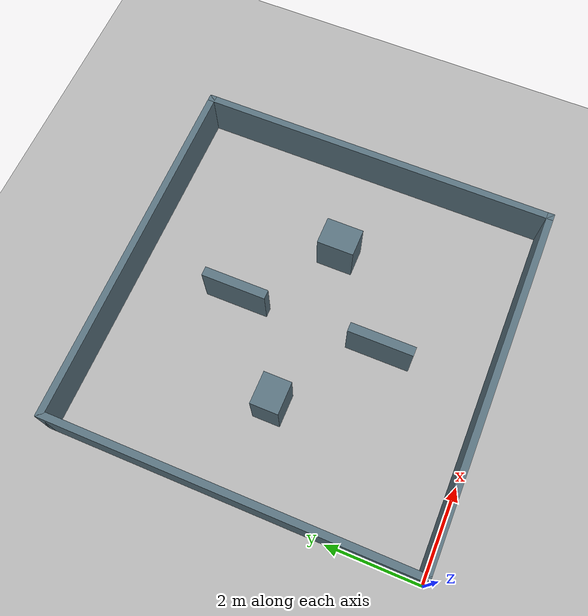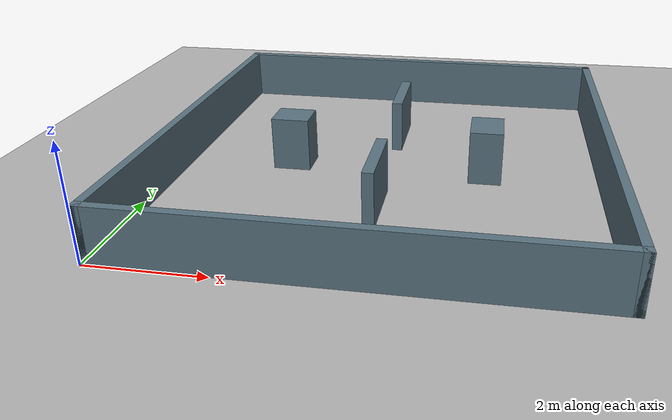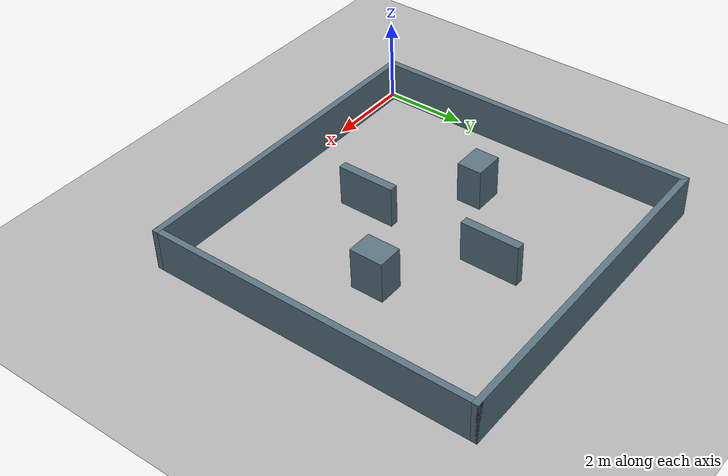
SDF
<?xml version="1.0"?>
<sdf version="1.6"><world name="patrol_indoor">
<physics name="default_physics" type="ode"><max_step_size>0.002</max_step_size><real_time_update_rate>500</real_time_update_rate></physics>
<light name="sun" type="directional"><pose>0 0 10 0 0 0</pose><diffuse>.9 .9 .9 1</diffuse><direction>-.3 -.4 -1</direction><cast_shadows>false</cast_shadows></light>
<model name="floor"><static>true</static><link name="floor"><collision name="collision"><geometry><plane><normal>0 0 1</normal><size>30 30</size></plane></geometry></collision><visual name="visual"><geometry><plane><normal>0 0 1</normal><size>30 30</size></plane></geometry><material><ambient>.7 .7 .7 1</ambient></material></visual></link></model>
<model name="wall_0"><static>true</static><pose>4.0 0.075 .5 0 0 0</pose><link name="wall"><collision name="collision"><geometry><box><size>8.0 0.15 1</size></box></geometry></collision><visual name="visual"><geometry><box><size>8.0 0.15 1</size></box></geometry><material><ambient>.35 .45 .5 1</ambient><diffuse>.35 .45 .5 1</diffuse></material></visual></link></model>
<model name="wall_1"><static>true</static><pose>4.0 7.925 .5 0 0 0</pose><link name="wall"><collision name="collision"><geometry><box><size>8.0 0.15 1</size></box></geometry></collision><visual name="visual"><geometry><box><size>8.0 0.15 1</size></box></geometry><material><ambient>.35 .45 .5 1</ambient><diffuse>.35 .45 .5 1</diffuse></material></visual></link></model>
<model name="wall_2"><static>true</static><pose>0.075 4.0 .5 0 0 0</pose><link name="wall"><collision name="collision"><geometry><box><size>0.15 8.0 1</size></box></geometry></collision><visual name="visual"><geometry><box><size>0.15 8.0 1</size></box></geometry><material><ambient>.35 .45 .5 1</ambient><diffuse>.35 .45 .5 1</diffuse></material></visual></link></model>
<model name="wall_3"><static>true</static><pose>7.925 4.0 .5 0 0 0</pose><link name="wall"><collision name="collision"><geometry><box><size>0.15 8.0 1</size></box></geometry></collision><visual name="visual"><geometry><box><size>0.15 8.0 1</size></box></geometry><material><ambient>.35 .45 .5 1</ambient><diffuse>.35 .45 .5 1</diffuse></material></visual></link></model>
<model name="wall_4"><static>true</static><pose>4.0 2.4 .5 0 0 0</pose><link name="wall"><collision name="collision"><geometry><box><size>0.2 1.4 1</size></box></geometry></collision><visual name="visual"><geometry><box><size>0.2 1.4 1</size></box></geometry><material><ambient>.35 .45 .5 1</ambient><diffuse>.35 .45 .5 1</diffuse></material></visual></link></model>
<model name="wall_5"><static>true</static><pose>4.0 5.6000000000000005 .5 0 0 0</pose><link name="wall"><collision name="collision"><geometry><box><size>0.2 1.4 1</size></box></geometry></collision><visual name="visual"><geometry><box><size>0.2 1.4 1</size></box></geometry><material><ambient>.35 .45 .5 1</ambient><diffuse>.35 .45 .5 1</diffuse></material></visual></link></model>
<model name="wall_6"><static>true</static><pose>5.8 4.0 .5 0 0 0</pose><link name="wall"><collision name="collision"><geometry><box><size>0.6 0.8 1</size></box></geometry></collision><visual name="visual"><geometry><box><size>0.6 0.8 1</size></box></geometry><material><ambient>.35 .45 .5 1</ambient><diffuse>.35 .45 .5 1</diffuse></material></visual></link></model>
<model name="wall_7"><static>true</static><pose>2.15 4.0 .5 0 0 0</pose><link name="wall"><collision name="collision"><geometry><box><size>0.7 0.6 1</size></box></geometry></collision><visual name="visual"><geometry><box><size>0.7 0.6 1</size></box></geometry><material><ambient>.35 .45 .5 1</ambient><diffuse>.35 .45 .5 1</diffuse></material></visual></link></model>
</world></sdf>
